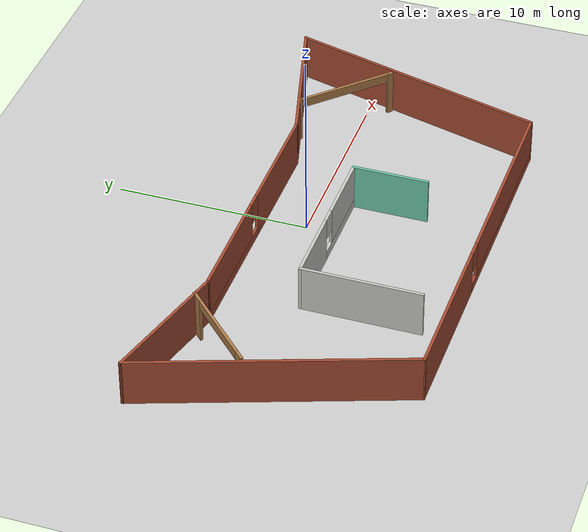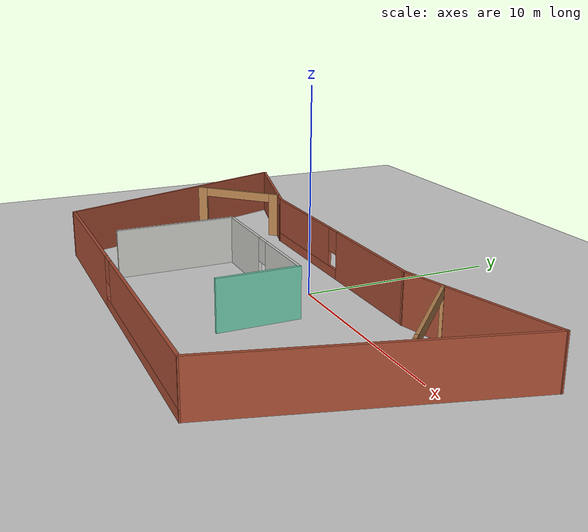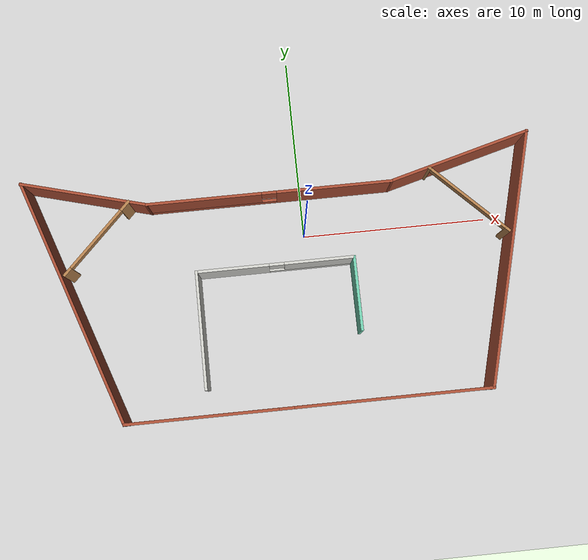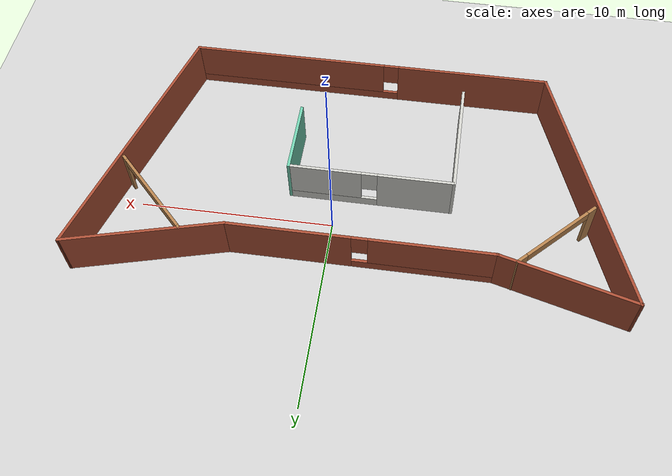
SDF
<sdf version="1.6">
 <world name="default">
  <light name="sun" type="directional">
   <pose>0 0 10 0 -0 0</pose>
   <diffuse>0.8 0.8 0.8 1</diffuse>
   <specular>0.2 0.2 0.2 1</specular>
   <attenuation>
    <range>1000</range>
    <constant>0.9</constant>
    <linear>0.01</linear>
    <quadratic>0.001</quadratic>
   </attenuation>
   <direction>-0.5 0.1 -0.9</direction>
  </light>
  <model name="ground_plane">
   <static>1</static>
   <link name="link">
    <collision name="collision">
     <geometry><plane><normal>0 0 1</normal><size>100 100</size></plane></geometry>
     <surface>
      <contact><collide_bitmask>65535</collide_bitmask></contact>
      <friction><ode><mu>100</mu><mu2>50</mu2></ode></friction>
     </surface>
    </collision>
    <visual name="visual">
     <cast_shadows>0</cast_shadows>
     <geometry><plane><normal>0 0 1</normal><size>100 100</size></plane></geometry>
     <material>
      <script><uri>file://media/materials/scripts/gazebo.material</uri><name>Gazebo/Grey</name></script>
     </material>
    </visual>
   </link>
  </model>
  <gravity>0 0 -9.8</gravity>
  <magnetic_field>6e-06 2.3e-05 -4.2e-05</magnetic_field>
  <atmosphere type="adiabatic"/>
  <physics name="default_physics" default="0" type="ode">
   <max_step_size>0.001</max_step_size>
   <real_time_factor>1</real_time_factor>
   <real_time_update_rate>1000</real_time_update_rate>
  </physics>
  <scene><ambient>0.4 0.4 0.4 1</ambient><background>0.7 0.7 0.7 1</background><shadows>1</shadows></scene>
  <spherical_coordinates>
   <surface_model>EARTH_WGS84</surface_model>
   <latitude_deg>0</latitude_deg>
   <longitude_deg>0</longitude_deg>
   <elevation>0</elevation>
   <heading_deg>0</heading_deg>
  </spherical_coordinates>
  <model name="Spacious">
   <pose>-1.19972 -2.48312 0 0 -0 0</pose>
   <link name="Wall_10">
    <collision name="Wall_10_Collision">
     <geometry><box><size>14.0571 0.15 2.5</size></box></geometry>
     <pose>0 0 1.25 0 -0 0</pose>
    </collision>
    <visual name="Wall_10_Visual">
     <pose>0 0 1.25 0 -0 0</pose>
     <geometry><box><size>14.0571 0.15 2.5</size></box></geometry>
     <material>
      <script><uri>file://media/materials/scripts/gazebo.material</uri><name>Gazebo/Bricks</name></script>
      <ambient>0.996078 0.47451 0.0196078 1</ambient>
     </material>
     <meta><layer>0</layer></meta>
    </visual>
    <pose>-11.3404 -0.127519 0 0 0 -1.23258</pose>
   </link>
   <link name="Wall_13">
    <pose>-0.529451 0.797136 0 0 -0 0</pose>
    <visual name="Wall_13_Visual_0">
     <pose>-2.28858 0 1.25 0 -0 0</pose>
     <geometry><box><size>3.92284 0.15 2.5</size></box></geometry>
     <material>
      <script><uri>file://media/materials/scripts/gazebo.material</uri><name>Gazebo/CeilingTiled</name></script>
      <ambient>0.435294 0.796078 0.67451 1</ambient>
     </material>
     <meta><layer>0</layer></meta>
    </visual>
    <collision name="Wall_13_Collision_0">
     <geometry><box><size>3.92284 0.15 2.5</size></box></geometry>
     <pose>-2.28858 0 1.25 0 -0 0</pose>
    </collision>
    <visual name="Wall_13_Visual_1">
     <pose>1.96142 0 0.25 0 -0 0</pose>
     <geometry><box><size>4.57716 0.15 0.5</size></box></geometry>
     <material>
      <script><uri>file://media/materials/scripts/gazebo.material</uri><name>Gazebo/CeilingTiled</name></script>
      <ambient>0.435294 0.796078 0.67451 1</ambient>
     </material>
     <meta><layer>0</layer></meta>
    </visual>
    <collision name="Wall_13_Collision_1">
     <geometry><box><size>4.57716 0.15 0.5</size></box></geometry>
     <pose>1.96142 0 0.25 0 -0 0</pose>
    </collision>
    <visual name="Wall_13_Visual_2">
     <pose>2.36142 0 1.5 0 -0 0</pose>
     <geometry><box><size>3.77716 0.15 2</size></box></geometry>
     <material>
      <script><uri>file://media/materials/scripts/gazebo.material</uri><name>Gazebo/CeilingTiled</name></script>
      <ambient>0.435294 0.796078 0.67451 1</ambient>
     </material>
     <meta><layer>0</layer></meta>
    </visual>
    <collision name="Wall_13_Collision_2">
     <geometry><box><size>3.77716 0.15 2</size></box></geometry>
     <pose>2.36142 0 1.5 0 -0 0</pose>
    </collision>
    <visual name="Wall_13_Visual_3">
     <pose>0.072836 0 1.9 0 -0 0</pose>
     <geometry><box><size>0.8 0.15 1.2</size></box></geometry>
     <material>
      <script><uri>file://media/materials/scripts/gazebo.material</uri><name>Gazebo/CeilingTiled</name></script>
      <ambient>0.435294 0.796078 0.67451 1</ambient>
     </material>
     <meta><layer>0</layer></meta>
    </visual>
    <collision name="Wall_13_Collision_3">
     <geometry><box><size>0.8 0.15 1.2</size></box></geometry>
     <pose>0.072836 0 1.9 0 -0 0</pose>
    </collision>
   </link>
   <link name="Wall_14">
    <collision name="Wall_14_Collision">
     <geometry><box><size>4 0.15 2.5</size></box></geometry>
     <pose>0 0 1.25 0 -0 0</pose>
    </collision>
    <visual name="Wall_14_Visual">
     <pose>0 0 1.25 0 -0 0</pose>
     <geometry><box><size>4 0.15 2.5</size></box></geometry>
     <material>
      <script><uri>file://media/materials/scripts/gazebo.material</uri><name>Gazebo/Grey</name></script>
      <ambient>0.435294 0.796078 0.67451 1</ambient>
     </material>
     <meta><layer>0</layer></meta>
    </visual>
    <pose>3.64555 -1.12786 0 0 0 -1.5708</pose>
   </link>
   <link name="Wall_16">
    <pose>10.0924 3.27483 0 0 0 -0.785398</pose>
    <visual name="Wall_16_Visual_0">
     <pose>-2.66091 0 1.25 0 -0 0</pose>
     <geometry><box><size>0.178183 0.15 2.5</size></box></geometry>
     <material>
      <script><uri>file://media/materials/scripts/gazebo.material</uri><name>Gazebo/Wood</name></script>
      <ambient>1 0.764706 0.305882 1</ambient>
     </material>
     <meta><layer>0</layer></meta>
    </visual>
    <collision name="Wall_16_Collision_0">
     <geometry><box><size>0.178183 0.15 2.5</size></box></geometry>
     <pose>-2.66091 0 1.25 0 -0 0</pose>
    </collision>
    <visual name="Wall_16_Visual_1">
     <pose>2.58909 0 1.25 0 -0 0</pose>
     <geometry><box><size>0.321817 0.15 2.5</size></box></geometry>
     <material>
      <script><uri>file://media/materials/scripts/gazebo.material</uri><name>Gazebo/Wood</name></script>
      <ambient>1 0.764706 0.305882 1</ambient>
     </material>
     <meta><layer>0</layer></meta>
    </visual>
    <collision name="Wall_16_Collision_1">
     <geometry><box><size>0.321817 0.15 2.5</size></box></geometry>
     <pose>2.58909 0 1.25 0 -0 0</pose>
    </collision>
    <visual name="Wall_16_Visual_2">
     <pose>-0.071817 0 2.25 0 -0 0</pose>
     <geometry><box><size>5 0.15 0.5</size></box></geometry>
     <material>
      <script><uri>file://media/materials/scripts/gazebo.material</uri><name>Gazebo/Wood</name></script>
      <ambient>1 0.764706 0.305882 1</ambient>
     </material>
     <meta><layer>0</layer></meta>
    </visual>
    <collision name="Wall_16_Collision_2">
     <geometry><box><size>5 0.15 0.5</size></box></geometry>
     <pose>-0.071817 0 2.25 0 -0 0</pose>
    </collision>
   </link>
   <link name="Wall_18">
    <pose>-9.78448 3.12048 0 0 0 -2.35619</pose>
    <visual name="Wall_18_Visual_0">
     <pose>-2.27969 0 1.25 0 -0 0</pose>
     <geometry><box><size>0.690628 0.15 2.5</size></box></geometry>
     <material>
      <script><uri>file://media/materials/scripts/gazebo.material</uri><name>Gazebo/Wood</name></script>
      <ambient>1 0.764706 0.305882 1</ambient>
     </material>
     <meta><layer>0</layer></meta>
    </visual>
    <collision name="Wall_18_Collision_0">
     <geometry><box><size>0.690628 0.15 2.5</size></box></geometry>
     <pose>-2.27969 0 1.25 0 -0 0</pose>
    </collision>
    <visual name="Wall_18_Visual_1">
     <pose>2.34531 0 1.25 0 -0 0</pose>
     <geometry><box><size>0.559372 0.15 2.5</size></box></geometry>
     <material>
      <script><uri>file://media/materials/scripts/gazebo.material</uri><name>Gazebo/Wood</name></script>
      <ambient>1 0.764706 0.305882 1</ambient>
     </material>
     <meta><layer>0</layer></meta>
    </visual>
    <collision name="Wall_18_Collision_1">
     <geometry><box><size>0.559372 0.15 2.5</size></box></geometry>
     <pose>2.34531 0 1.25 0 -0 0</pose>
    </collision>
    <visual name="Wall_18_Visual_2">
     <pose>0.065628 0 2.25 0 -0 0</pose>
     <geometry><box><size>4 0.15 0.5</size></box></geometry>
     <material>
      <script><uri>file://media/materials/scripts/gazebo.material</uri><name>Gazebo/Wood</name></script>
      <ambient>1 0.764706 0.305882 1</ambient>
     </material>
     <meta><layer>0</layer></meta>
    </visual>
    <collision name="Wall_18_Collision_2">
     <geometry><box><size>4 0.15 0.5</size></box></geometry>
     <pose>0.065628 0 2.25 0 -0 0</pose>
    </collision>
   </link>
   <link name="Wall_20">
    <collision name="Wall_20_Collision">
     <geometry><box><size>6.25 0.15 2.5</size></box></geometry>
     <pose>0 0 1.25 0 -0 0</pose>
    </collision>
    <visual name="Wall_20_Visual">
     <pose>0 0 1.25 0 -0 0</pose>
     <geometry><box><size>6.25 0.15 2.5</size></box></geometry>
     <material>
      <script><uri>file://media/materials/scripts/gazebo.material</uri><name>Gazebo/CeilingTiled</name></script>
      <ambient>0.435294 0.796078 0.67451 1</ambient>
     </material>
     <meta><layer>0</layer></meta>
    </visual>
    <pose>-4.70445 -2.25286 0 0 0 -1.5708</pose>
   </link>
   <link name="Wall_5">
    <pose>0.516802 -6.68715 0 0 -0 0</pose>
    <visual name="Wall_5_Visual_0">
     <pose>-5.60035 0 1.25 0 -0 0</pose>
     <geometry><box><size>8.04931 0.15 2.5</size></box></geometry>
     <material>
      <script><uri>file://media/materials/scripts/gazebo.material</uri><name>Gazebo/Bricks</name></script>
      <ambient>0.996078 0.47451 0.0196078 1</ambient>
     </material>
     <meta><layer>0</layer></meta>
    </visual>
    <collision name="Wall_5_Collision_0">
     <geometry><box><size>8.04931 0.15 2.5</size></box></geometry>
     <pose>-5.60035 0 1.25 0 -0 0</pose>
    </collision>
    <visual name="Wall_5_Visual_1">
     <pose>4.02465 0 0.25 0 -0 0</pose>
     <geometry><box><size>11.2007 0.15 0.5</size></box></geometry>
     <material>
      <script><uri>file://media/materials/scripts/gazebo.material</uri><name>Gazebo/Bricks</name></script>
      <ambient>0.996078 0.47451 0.0196078 1</ambient>
     </material>
     <meta><layer>0</layer></meta>
    </visual>
    <collision name="Wall_5_Collision_1">
     <geometry><box><size>11.2007 0.15 0.5</size></box></geometry>
     <pose>4.02465 0 0.25 0 -0 0</pose>
    </collision>
    <visual name="Wall_5_Visual_2">
     <pose>4.42465 0 1.5 0 -0 0</pose>
     <geometry><box><size>10.4007 0.15 2</size></box></geometry>
     <material>
      <script><uri>file://media/materials/scripts/gazebo.material</uri><name>Gazebo/Bricks</name></script>
      <ambient>0.996078 0.47451 0.0196078 1</ambient>
     </material>
     <meta><layer>0</layer></meta>
    </visual>
    <collision name="Wall_5_Collision_2">
     <geometry><box><size>10.4007 0.15 2</size></box></geometry>
     <pose>4.42465 0 1.5 0 -0 0</pose>
    </collision>
    <visual name="Wall_5_Visual_3">
     <pose>-1.17569 0 1.9 0 -0 0</pose>
     <geometry><box><size>0.8 0.15 1.2</size></box></geometry>
     <material>
      <script><uri>file://media/materials/scripts/gazebo.material</uri><name>Gazebo/Bricks</name></script>
      <ambient>0.996078 0.47451 0.0196078 1</ambient>
     </material>
     <meta><layer>0</layer></meta>
    </visual>
    <collision name="Wall_5_Collision_3">
     <geometry><box><size>0.8 0.15 1.2</size></box></geometry>
     <pose>-1.17569 0 1.9 0 -0 0</pose>
    </collision>
   </link>
   <link name="Wall_6">
    <collision name="Wall_6_Collision">
     <geometry><box><size>14 0.15 2.5</size></box></geometry>
     <pose>0 0 1.25 0 -0 0</pose>
    </collision>
    <visual name="Wall_6_Visual">
     <pose>0 0 1.25 0 -0 0</pose>
     <geometry><box><size>14 0.15 2.5</size></box></geometry>
     <material>
      <script><uri>file://media/materials/scripts/gazebo.material</uri><name>Gazebo/Bricks</name></script>
      <ambient>0.996078 0.47451 0.0196078 1</ambient>
     </material>
     <meta><layer>0</layer></meta>
    </visual>
    <pose>11.8591 0.001891 0 0 -0 1.309</pose>
   </link>
   <link name="Wall_7">
    <collision name="Wall_7_Collision">
     <geometry><box><size>8 0.15 2.5</size></box></geometry>
     <pose>0 0 1.25 0 -0 0</pose>
    </collision>
    <visual name="Wall_7_Visual">
     <pose>0 0 1.25 0 -0 0</pose>
     <geometry><box><size>8 0.15 2.5</size></box></geometry>
     <material>
      <script><uri>file://media/materials/scripts/gazebo.material</uri><name>Gazebo/Bricks</name></script>
      <ambient>0.996078 0.47451 0.0196078 1</ambient>
     </material>
     <meta><layer>0</layer></meta>
    </visual>
    <pose>9.86019 5.67506 0 0 0 -2.87979</pose>
   </link>
   <link name="Wall_8">
    <pose>-0.481072 4.6592 0 0 -0 3.14159</pose>
    <visual name="Wall_8_Visual_0">
     <pose>-3.5045 0 1.25 0 -0 0</pose>
     <geometry><box><size>6.241 0.15 2.5</size></box></geometry>
     <material>
      <script><uri>file://media/materials/scripts/gazebo.material</uri><name>Gazebo/Bricks</name></script>
      <ambient>0.996078 0.47451 0.0196078 1</ambient>
     </material>
     <meta><layer>0</layer></meta>
    </visual>
    <collision name="Wall_8_Collision_0">
     <geometry><box><size>6.241 0.15 2.5</size></box></geometry>
     <pose>-3.5045 0 1.25 0 -0 0</pose>
    </collision>
    <visual name="Wall_8_Visual_1">
     <pose>3.1205 0 0.25 0 -0 0</pose>
     <geometry><box><size>7.009 0.15 0.5</size></box></geometry>
     <material>
      <script><uri>file://media/materials/scripts/gazebo.material</uri><name>Gazebo/Bricks</name></script>
      <ambient>0.996078 0.47451 0.0196078 1</ambient>
     </material>
     <meta><layer>0</layer></meta>
    </visual>
    <collision name="Wall_8_Collision_1">
     <geometry><box><size>7.009 0.15 0.5</size></box></geometry>
     <pose>3.1205 0 0.25 0 -0 0</pose>
    </collision>
    <visual name="Wall_8_Visual_2">
     <pose>3.5205 0 1.5 0 -0 0</pose>
     <geometry><box><size>6.209 0.15 2</size></box></geometry>
     <material>
      <script><uri>file://media/materials/scripts/gazebo.material</uri><name>Gazebo/Bricks</name></script>
      <ambient>0.996078 0.47451 0.0196078 1</ambient>
     </material>
     <meta><layer>0</layer></meta>
    </visual>
    <collision name="Wall_8_Collision_2">
     <geometry><box><size>6.209 0.15 2</size></box></geometry>
     <pose>3.5205 0 1.5 0 -0 0</pose>
    </collision>
    <visual name="Wall_8_Visual_3">
     <pose>0.015999 0 1.9 0 -0 0</pose>
     <geometry><box><size>0.8 0.15 1.2</size></box></geometry>
     <material>
      <script><uri>file://media/materials/scripts/gazebo.material</uri><name>Gazebo/Bricks</name></script>
      <ambient>0.996078 0.47451 0.0196078 1</ambient>
     </material>
     <meta><layer>0</layer></meta>
    </visual>
    <collision name="Wall_8_Collision_3">
     <geometry><box><size>0.8 0.15 1.2</size></box></geometry>
     <pose>0.015999 0 1.9 0 -0 0</pose>
    </collision>
   </link>
   <link name="Wall_9">
    <collision name="Wall_9_Collision">
     <geometry><box><size>7 0.15 2.5</size></box></geometry>
     <pose>0 0 1.25 0 -0 0</pose>
    </collision>
    <visual name="Wall_9_Visual">
     <pose>0 0 1.25 0 -0 0</pose>
     <geometry><box><size>7 0.15 2.5</size></box></geometry>
     <material>
      <script><uri>file://media/materials/scripts/gazebo.material</uri><name>Gazebo/Bricks</name></script>
      <ambient>0.996078 0.47451 0.0196078 1</ambient>
     </material>
     <meta><layer>0</layer></meta>
    </visual>
    <pose>-10.3394 5.54565 0 0 -0 2.87979</pose>
   </link>
   <static>1</static>
  </model>
 </world>
</sdf>
